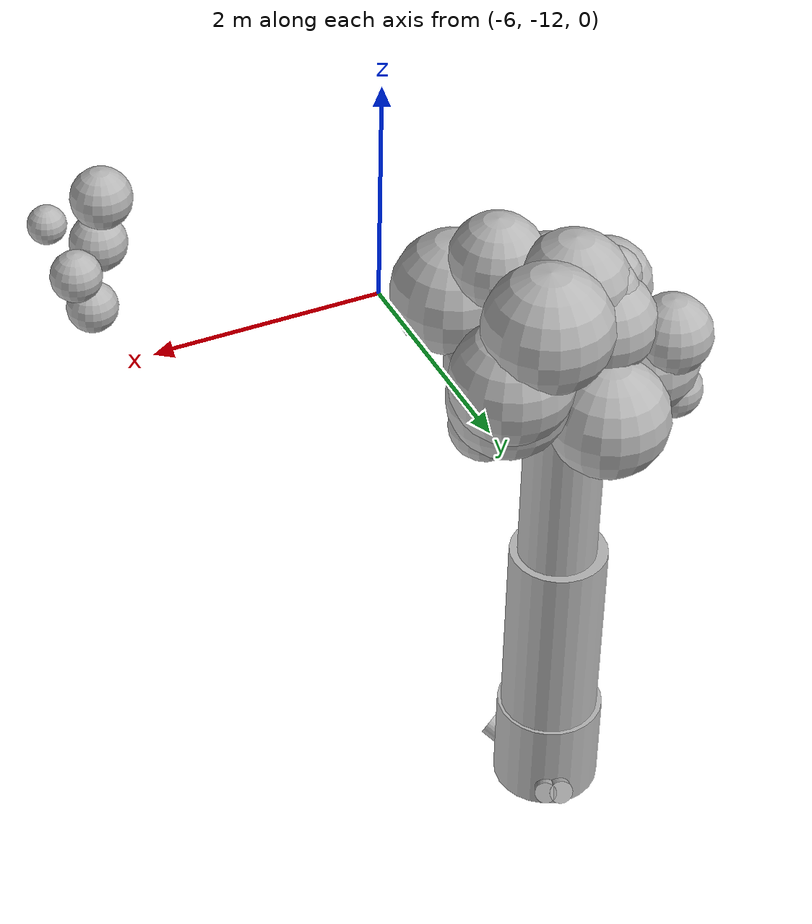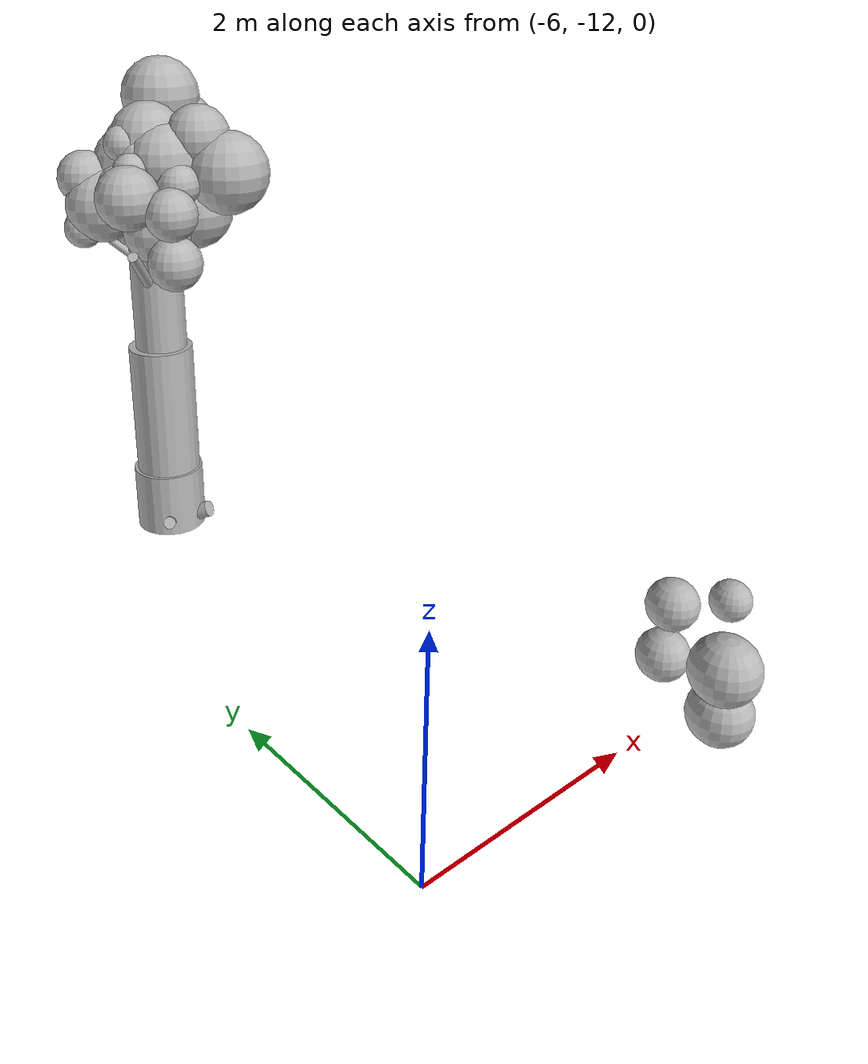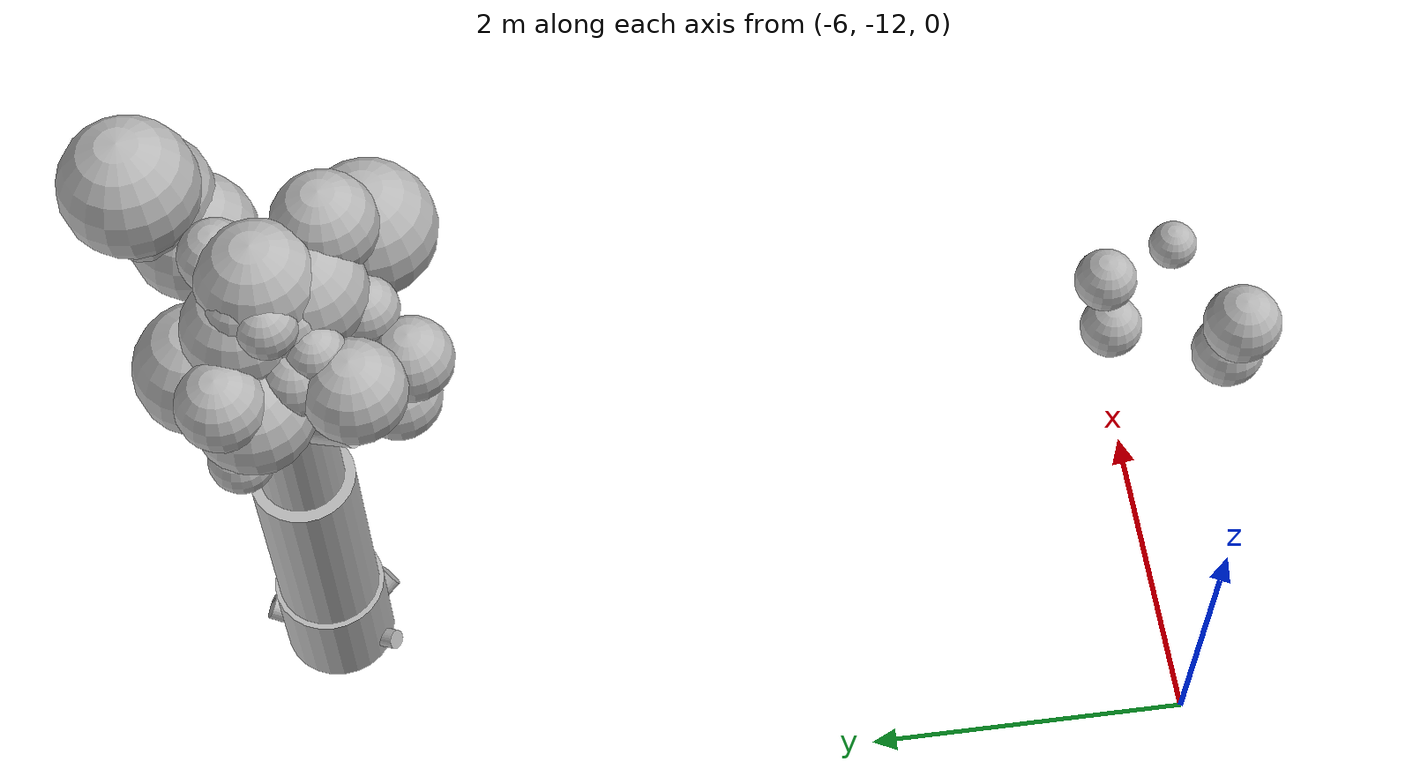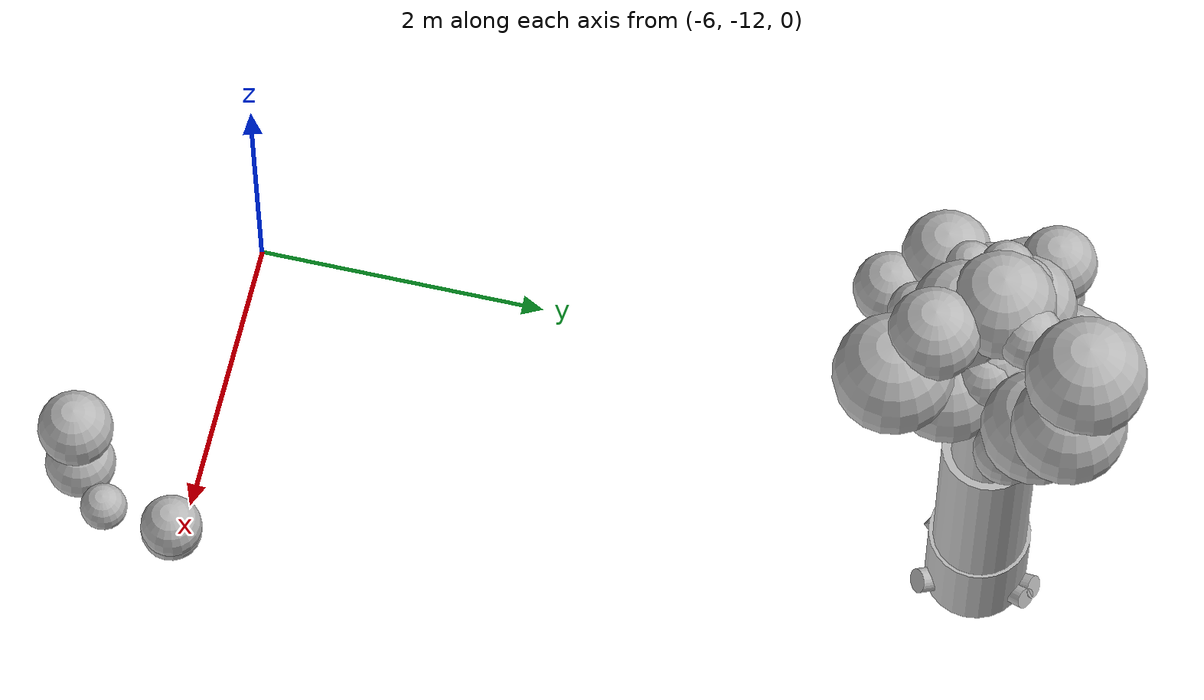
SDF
<sdf version="1.6">
 <world name="default">
  <model name="tree_7">
   <static>true</static>
   <pose>-4.7270 -6.6930 0 0 0 0</pose>
   <link name="trunk">
    <pose>0 0 1.5000 0 0 0</pose>
    <collision name="trunk_c">
     <geometry><cylinder><radius>0.3500</radius><length>3.0000</length></cylinder></geometry>
    </collision>
   </link>
   <link name="trunk_v0">
    <pose>0.0012 0.0001 0.3100 0 0 0</pose>
    <visual name="trunk_v0_v">
     <geometry><cylinder><radius>0.3448</radius><length>0.6448</length></cylinder></geometry>
     <material>
      <script>
       <uri>model://bushfire/materials/scripts</uri>
       <uri>model://bushfire/materials/textures</uri>
       <name>Bushfire/CharBark</name>
      </script>
     </material>
    </visual>
   </link>
   <link name="trunk_v1">
    <pose>0.0085 0.0008 1.2700 0 0 0</pose>
    <visual name="trunk_v1_v">
     <geometry><cylinder><radius>0.3150</radius><length>1.3520</length></cylinder></geometry>
     <material>
      <script>
       <uri>model://bushfire/materials/scripts</uri>
       <uri>model://bushfire/materials/textures</uri>
       <name>Bushfire/BarkSmooth</name>
      </script>
     </material>
    </visual>
   </link>
   <link name="trunk_v2">
    <pose>0.0215 0.0021 2.4600 0 0 0</pose>
    <visual name="trunk_v2_v">
     <geometry><cylinder><radius>0.2520</radius><length>1.1232</length></cylinder></geometry>
     <material>
      <script>
       <uri>model://bushfire/materials/scripts</uri>
       <uri>model://bushfire/materials/textures</uri>
       <name>Bushfire/BarkSmooth</name>
      </script>
     </material>
    </visual>
   </link>
   <link name="root0">
    <pose>0.1345 -0.1988 0.09 0 1.150 5.307</pose>
    <visual name="root0_v">
     <geometry><cylinder><radius>0.0834</radius><length>0.4200</length></cylinder></geometry>
     <material>
      <script>
       <uri>model://bushfire/materials/scripts</uri>
       <uri>model://bushfire/materials/textures</uri>
       <name>Bushfire/CharBark</name>
      </script>
     </material>
    </visual>
   </link>
   <link name="root1">
    <pose>-0.1308 -0.2012 0.09 0 1.150 4.136</pose>
    <visual name="root1_v">
     <geometry><cylinder><radius>0.0613</radius><length>0.4200</length></cylinder></geometry>
     <material>
      <script>
       <uri>model://bushfire/materials/scripts</uri>
       <uri>model://bushfire/materials/textures</uri>
       <name>Bushfire/CharBark</name>
      </script>
     </material>
    </visual>
   </link>
   <link name="root2">
    <pose>0.0603 0.2323 0.09 0 1.150 1.317</pose>
    <visual name="root2_v">
     <geometry><cylinder><radius>0.0780</radius><length>0.4200</length></cylinder></geometry>
     <material>
      <script>
       <uri>model://bushfire/materials/scripts</uri>
       <uri>model://bushfire/materials/textures</uri>
       <name>Bushfire/CharBark</name>
      </script>
     </material>
    </visual>
   </link>
   <link name="root3">
    <pose>0.1136 0.2114 0.09 0 1.150 1.078</pose>
    <visual name="root3_v">
     <geometry><cylinder><radius>0.0724</radius><length>0.4200</length></cylinder></geometry>
     <material>
      <script>
       <uri>model://bushfire/materials/scripts</uri>
       <uri>model://bushfire/materials/textures</uri>
       <name>Bushfire/CharBark</name>
      </script>
     </material>
    </visual>
   </link>
   <link name="branch0">
    <pose>0.2537 0.1529 3.0878 0 0.8420 0.5424</pose>
    <visual name="branch0_v">
     <geometry><cylinder><radius>0.0349</radius><length>0.7940</length></cylinder></geometry>
     <material>
      <script>
       <uri>model://bushfire/materials/scripts</uri>
       <uri>model://bushfire/materials/textures</uri>
       <name>Bushfire/BarkSmooth</name>
      </script>
     </material>
    </visual>
   </link>
   <link name="branch1">
    <pose>-0.2881 0.1263 2.9929 0 0.8406 2.7284</pose>
    <visual name="branch1_v">
     <geometry><cylinder><radius>0.0378</radius><length>0.8445</length></cylinder></geometry>
     <material>
      <script>
       <uri>model://bushfire/materials/scripts</uri>
       <uri>model://bushfire/materials/textures</uri>
       <name>Bushfire/BarkSmooth</name>
      </script>
     </material>
    </visual>
   </link>
   <link name="branch2">
    <pose>-0.2129 -0.1972 2.7429 0 0.8084 3.8886</pose>
    <visual name="branch2_v">
     <geometry><cylinder><radius>0.0505</radius><length>0.8025</length></cylinder></geometry>
     <material>
      <script>
       <uri>model://bushfire/materials/scripts</uri>
       <uri>model://bushfire/materials/textures</uri>
       <name>Bushfire/BarkSmooth</name>
      </script>
     </material>
    </visual>
   </link>
   <link name="branch3">
    <pose>0.1337 -0.1442 2.9264 0 0.5500 5.4599</pose>
    <visual name="branch3_v">
     <geometry><cylinder><radius>0.0387</radius><length>0.7526</length></cylinder></geometry>
     <material>
      <script>
       <uri>model://bushfire/materials/scripts</uri>
       <uri>model://bushfire/materials/textures</uri>
       <name>Bushfire/BarkSmooth</name>
      </script>
     </material>
    </visual>
   </link>
   <link name="foliage0">
    <pose>-0.0366 0.3886 3.2951 0 0 0</pose>
    <visual name="foliage0_v">
     <geometry><sphere><radius>0.3794</radius></sphere></geometry>
     <material>
      <script>
       <uri>model://bushfire/materials/scripts</uri>
       <uri>model://bushfire/materials/textures</uri>
       <name>Bushfire/Foliage2</name>
      </script>
     </material>
    </visual>
   </link>
   <link name="foliage1">
    <pose>-0.1208 0.1059 3.7719 0 0 0</pose>
    <visual name="foliage1_v">
     <geometry><sphere><radius>0.3311</radius></sphere></geometry>
     <material>
      <script>
       <uri>model://bushfire/materials/scripts</uri>
       <uri>model://bushfire/materials/textures</uri>
       <name>Bushfire/Foliage1</name>
      </script>
     </material>
    </visual>
   </link>
   <link name="foliage2">
    <pose>-0.4649 -0.4601 3.5781 0 0 0</pose>
    <visual name="foliage2_v">
     <geometry><sphere><radius>0.2943</radius></sphere></geometry>
     <material>
      <script>
       <uri>model://bushfire/materials/scripts</uri>
       <uri>model://bushfire/materials/textures</uri>
       <name>Bushfire/Foliage1</name>
      </script>
     </material>
    </visual>
   </link>
   <link name="foliage3">
    <pose>0.2884 -0.0512 3.5434 0 0 0</pose>
    <visual name="foliage3_v">
     <geometry><sphere><radius>0.2157</radius></sphere></geometry>
     <material>
      <script>
       <uri>model://bushfire/materials/scripts</uri>
       <uri>model://bushfire/materials/textures</uri>
       <name>Bushfire/Foliage0</name>
      </script>
     </material>
    </visual>
   </link>
   <link name="foliage4">
    <pose>0.6751 0.1807 3.3204 0 0 0</pose>
    <visual name="foliage4_v">
     <geometry><sphere><radius>0.2235</radius></sphere></geometry>
     <material>
      <script>
       <uri>model://bushfire/materials/scripts</uri>
       <uri>model://bushfire/materials/textures</uri>
       <name>Bushfire/Foliage2</name>
      </script>
     </material>
    </visual>
   </link>
   <link name="foliage5">
    <pose>-0.1360 0.0747 3.9720 0 0 0</pose>
    <visual name="foliage5_v">
     <geometry><sphere><radius>0.2075</radius></sphere></geometry>
     <material>
      <script>
       <uri>model://bushfire/materials/scripts</uri>
       <uri>model://bushfire/materials/textures</uri>
       <name>Bushfire/Foliage0</name>
      </script>
     </material>
    </visual>
   </link>
   <link name="foliage6">
    <pose>-0.1263 -0.1423 3.8318 0 0 0</pose>
    <visual name="foliage6_v">
     <geometry><sphere><radius>0.2387</radius></sphere></geometry>
     <material>
      <script>
       <uri>model://bushfire/materials/scripts</uri>
       <uri>model://bushfire/materials/textures</uri>
       <name>Bushfire/Foliage0</name>
      </script>
     </material>
    </visual>
   </link>
   <link name="foliage7">
    <pose>0.0075 -0.5514 3.6433 0 0 0</pose>
    <visual name="foliage7_v">
     <geometry><sphere><radius>0.1985</radius></sphere></geometry>
     <material>
      <script>
       <uri>model://bushfire/materials/scripts</uri>
       <uri>model://bushfire/materials/textures</uri>
       <name>Bushfire/Foliage1</name>
      </script>
     </material>
    </visual>
   </link>
   <link name="foliage8">
    <pose>0.5314 0.5969 4.2644 0 0 0</pose>
    <visual name="foliage8_v">
     <geometry><sphere><radius>0.3850</radius></sphere></geometry>
     <material>
      <script>
       <uri>model://bushfire/materials/scripts</uri>
       <uri>model://bushfire/materials/textures</uri>
       <name>Bushfire/Foliage1</name>
      </script>
     </material>
    </visual>
   </link>
   <link name="foliage9">
    <pose>-0.5888 0.2058 3.1955 0 0 0</pose>
    <visual name="foliage9_v">
     <geometry><sphere><radius>0.1845</radius></sphere></geometry>
     <material>
      <script>
       <uri>model://bushfire/materials/scripts</uri>
       <uri>model://bushfire/materials/textures</uri>
       <name>Bushfire/Foliage1</name>
      </script>
     </material>
    </visual>
   </link>
   <link name="foliage10">
    <pose>-0.1831 -0.0585 3.4994 0 0 0</pose>
    <visual name="foliage10_v">
     <geometry><sphere><radius>0.2789</radius></sphere></geometry>
     <material>
      <script>
       <uri>model://bushfire/materials/scripts</uri>
       <uri>model://bushfire/materials/textures</uri>
       <name>Bushfire/Foliage1</name>
      </script>
     </material>
    </visual>
   </link>
   <link name="foliage11">
    <pose>-0.0693 -0.2588 3.1957 0 0 0</pose>
    <visual name="foliage11_v">
     <geometry><sphere><radius>0.3307</radius></sphere></geometry>
     <material>
      <script>
       <uri>model://bushfire/materials/scripts</uri>
       <uri>model://bushfire/materials/textures</uri>
       <name>Bushfire/Foliage0</name>
      </script>
     </material>
    </visual>
   </link>
   <link name="foliage12">
    <pose>0.7176 0.5469 3.9154 0 0 0</pose>
    <visual name="foliage12_v">
     <geometry><sphere><radius>0.3688</radius></sphere></geometry>
     <material>
      <script>
       <uri>model://bushfire/materials/scripts</uri>
       <uri>model://bushfire/materials/textures</uri>
       <name>Bushfire/Foliage2</name>
      </script>
     </material>
    </visual>
   </link>
   <link name="foliage13">
    <pose>-0.1639 0.1409 3.5277 0 0 0</pose>
    <visual name="foliage13_v">
     <geometry><sphere><radius>0.1951</radius></sphere></geometry>
     <material>
      <script>
       <uri>model://bushfire/materials/scripts</uri>
       <uri>model://bushfire/materials/textures</uri>
       <name>Bushfire/Foliage1</name>
      </script>
     </material>
    </visual>
   </link>
   <link name="foliage14">
    <pose>-0.2163 -0.7731 3.4481 0 0 0</pose>
    <visual name="foliage14_v">
     <geometry><sphere><radius>0.2403</radius></sphere></geometry>
     <material>
      <script>
       <uri>model://bushfire/materials/scripts</uri>
       <uri>model://bushfire/materials/textures</uri>
       <name>Bushfire/Foliage2</name>
      </script>
     </material>
    </visual>
   </link>
   <link name="foliage15">
    <pose>0.4995 -0.6122 3.7050 0 0 0</pose>
    <visual name="foliage15_v">
     <geometry><sphere><radius>0.3902</radius></sphere></geometry>
     <material>
      <script>
       <uri>model://bushfire/materials/scripts</uri>
       <uri>model://bushfire/materials/textures</uri>
       <name>Bushfire/Foliage0</name>
      </script>
     </material>
    </visual>
   </link>
   <link name="foliage16">
    <pose>0.1632 -0.0298 3.5238 0 0 0</pose>
    <visual name="foliage16_v">
     <geometry><sphere><radius>0.2776</radius></sphere></geometry>
     <material>
      <script>
       <uri>model://bushfire/materials/scripts</uri>
       <uri>model://bushfire/materials/textures</uri>
       <name>Bushfire/Foliage0</name>
      </script>
     </material>
    </visual>
   </link>
   <link name="foliage17">
    <pose>-0.3717 -0.1658 3.6133 0 0 0</pose>
    <visual name="foliage17_v">
     <geometry><sphere><radius>0.2095</radius></sphere></geometry>
     <material>
      <script>
       <uri>model://bushfire/materials/scripts</uri>
       <uri>model://bushfire/materials/textures</uri>
       <name>Bushfire/Foliage2</name>
      </script>
     </material>
    </visual>
   </link>
   <link name="foliage18">
    <pose>-0.4260 0.1047 3.4140 0 0 0</pose>
    <visual name="foliage18_v">
     <geometry><sphere><radius>0.3465</radius></sphere></geometry>
     <material>
      <script>
       <uri>model://bushfire/materials/scripts</uri>
       <uri>model://bushfire/materials/textures</uri>
       <name>Bushfire/Foliage0</name>
      </script>
     </material>
    </visual>
   </link>
   <link name="foliage19">
    <pose>0.3277 -0.3989 4.0229 0 0 0</pose>
    <visual name="foliage19_v">
     <geometry><sphere><radius>0.3008</radius></sphere></geometry>
     <material>
      <script>
       <uri>model://bushfire/materials/scripts</uri>
       <uri>model://bushfire/materials/textures</uri>
       <name>Bushfire/Foliage0</name>
      </script>
     </material>
    </visual>
   </link>
   <link name="foliage20">
    <pose>0.0153 -0.0257 3.9907 0 0 0</pose>
    <visual name="foliage20_v">
     <geometry><sphere><radius>0.3485</radius></sphere></geometry>
     <material>
      <script>
       <uri>model://bushfire/materials/scripts</uri>
       <uri>model://bushfire/materials/textures</uri>
       <name>Bushfire/Foliage2</name>
      </script>
     </material>
    </visual>
   </link>
   <link name="foliage21">
    <pose>-0.5171 0.2460 3.6576 0 0 0</pose>
    <visual name="foliage21_v">
     <geometry><sphere><radius>0.2528</radius></sphere></geometry>
     <material>
      <script>
       <uri>model://bushfire/materials/scripts</uri>
       <uri>model://bushfire/materials/textures</uri>
       <name>Bushfire/Foliage2</name>
      </script>
     </material>
    </visual>
   </link>
   <link name="foliage22">
    <pose>-0.1393 -0.6566 2.9631 0 0 0</pose>
    <visual name="foliage22_v">
     <geometry><sphere><radius>0.2554</radius></sphere></geometry>
     <material>
      <script>
       <uri>model://bushfire/materials/scripts</uri>
       <uri>model://bushfire/materials/textures</uri>
       <name>Bushfire/Foliage1</name>
      </script>
     </material>
    </visual>
   </link>
   <link name="foliage23">
    <pose>0.3185 -0.2832 3.3231 0 0 0</pose>
    <visual name="foliage23_v">
     <geometry><sphere><radius>0.3663</radius></sphere></geometry>
     <material>
      <script>
       <uri>model://bushfire/materials/scripts</uri>
       <uri>model://bushfire/materials/textures</uri>
       <name>Bushfire/Foliage2</name>
      </script>
     </material>
    </visual>
   </link>
   <link name="foliage24">
    <pose>0.6254 0.3497 3.6303 0 0 0</pose>
    <visual name="foliage24_v">
     <geometry><sphere><radius>0.3682</radius></sphere></geometry>
     <material>
      <script>
       <uri>model://bushfire/materials/scripts</uri>
       <uri>model://bushfire/materials/textures</uri>
       <name>Bushfire/Foliage1</name>
      </script>
     </material>
    </visual>
   </link>
   <link name="foliage25">
    <pose>-0.2555 -0.0486 3.9737 0 0 0</pose>
    <visual name="foliage25_v">
     <geometry><sphere><radius>0.1786</radius></sphere></geometry>
     <material>
      <script>
       <uri>model://bushfire/materials/scripts</uri>
       <uri>model://bushfire/materials/textures</uri>
       <name>Bushfire/Foliage1</name>
      </script>
     </material>
    </visual>
   </link>
   <link name="foliage26">
    <pose>-0.3194 -0.2854 3.7658 0 0 0</pose>
    <visual name="foliage26_v">
     <geometry><sphere><radius>0.1706</radius></sphere></geometry>
     <material>
      <script>
       <uri>model://bushfire/materials/scripts</uri>
       <uri>model://bushfire/materials/textures</uri>
       <name>Bushfire/Foliage0</name>
      </script>
     </material>
    </visual>
   </link>
   <link name="foliage27">
    <pose>0.0461 -0.2568 3.8227 0 0 0</pose>
    <visual name="foliage27_v">
     <geometry><sphere><radius>0.3485</radius></sphere></geometry>
     <material>
      <script>
       <uri>model://bushfire/materials/scripts</uri>
       <uri>model://bushfire/materials/textures</uri>
       <name>Bushfire/Foliage2</name>
      </script>
     </material>
    </visual>
   </link>
   <link name="foliage28">
    <pose>0.2038 0.1880 4.0067 0 0 0</pose>
    <visual name="foliage28_v">
     <geometry><sphere><radius>0.2124</radius></sphere></geometry>
     <material>
      <script>
       <uri>model://bushfire/materials/scripts</uri>
       <uri>model://bushfire/materials/textures</uri>
       <name>Bushfire/Foliage1</name>
      </script>
     </material>
    </visual>
   </link>
  </model>
  <model name="scrub">
   <static>true</static>
   <link name="scrub75_0">
    <pose>-3.5009 -11.9721 0.6554 0 0 0</pose>
    <visual name="scrub75_0_v">
     <geometry><sphere><radius>0.2079</radius></sphere></geometry>
     <material>
      <script>
       <uri>model://bushfire/materials/scripts</uri>
       <uri>model://bushfire/materials/textures</uri>
       <name>Bushfire/Foliage1</name>
      </script>
     </material>
    </visual>
   </link>
   <link name="scrub75_1">
    <pose>-3.3677 -11.9200 1.0225 0 0 0</pose>
    <visual name="scrub75_1_v">
     <geometry><sphere><radius>0.2068</radius></sphere></geometry>
     <material>
      <script>
       <uri>model://bushfire/materials/scripts</uri>
       <uri>model://bushfire/materials/textures</uri>
       <name>Bushfire/Foliage0</name>
      </script>
     </material>
    </visual>
   </link>
   <link name="scrub75_2">
    <pose>-3.8789 -12.7078 1.1156 0 0 0</pose>
    <visual name="scrub75_2_v">
     <geometry><sphere><radius>0.2559</radius></sphere></geometry>
     <material>
      <script>
       <uri>model://bushfire/materials/scripts</uri>
       <uri>model://bushfire/materials/textures</uri>
       <name>Bushfire/Foliage1</name>
      </script>
     </material>
    </visual>
   </link>
   <link name="scrub75_3">
    <pose>-3.3010 -12.3527 1.2492 0 0 0</pose>
    <visual name="scrub75_3_v">
     <geometry><sphere><radius>0.1568</radius></sphere></geometry>
     <material>
      <script>
       <uri>model://bushfire/materials/scripts</uri>
       <uri>model://bushfire/materials/textures</uri>
       <name>Bushfire/Foliage0</name>
      </script>
     </material>
    </visual>
   </link>
   <link name="scrub75_4">
    <pose>-3.8235 -12.6842 0.7139 0 0 0</pose>
    <visual name="scrub75_4_v">
     <geometry><sphere><radius>0.2402</radius></sphere></geometry>
     <material>
      <script>
       <uri>model://bushfire/materials/scripts</uri>
       <uri>model://bushfire/materials/textures</uri>
       <name>Bushfire/Foliage0</name>
      </script>
     </material>
    </visual>
   </link>
  </model>
 </world>
</sdf>
